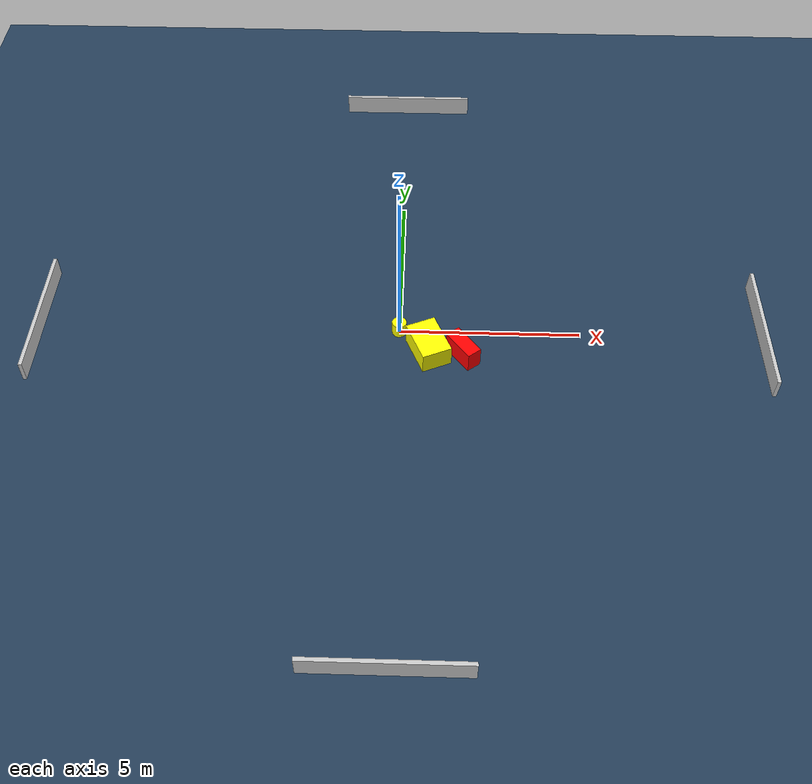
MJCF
<?xml version="1.0" ?>
<mujoco model="generated_environment">
  <option timestep="0.01" integrator="RK4" cone="elliptic"/>
  <default>
    <geom density="1"/>
  </default>
  <asset>
    <texture builtin="gradient" height="3072" name="skybox" rgb1="0.3 0.5 0.7" rgb2="0 0 0" type="skybox" width="512"/>
    <texture builtin="checker" height="300" name="groundplane" rgb1="0.2 0.3 0.4" rgb2="0.1 0.2 0.3" type="2d" width="300"/>
    <material name="groundplane" reflectance="0.2" texrepeat="5 5" texture="groundplane"/>
  </asset>
  <worldbody>
    <light dir="0 0 -1" directional="true" pos="0 0 1.5"/>
    <geom condim="3" friction="0.5 0.005 0.001" material="groundplane" name="floor" pos="0 0 0" size="0 0 0.05" type="plane"/>
    <body name="walls">
      <geom name="wall_1" condim="4" pos="-10.0 0.0 0.3" rgba="0.800000011920929 0.800000011920929 0.800000011920929 1.0" size="0.05 2.0 0.3" type="box"/>
      <geom name="wall_2" condim="4" pos="10.0 0.0 0.3" rgba="0.800000011920929 0.800000011920929 0.800000011920929 1.0" size="0.05 2.0 0.3" type="box"/>
      <geom name="wall_3" condim="4" pos="0.0 -10.0 0.3" rgba="0.800000011920929 0.800000011920929 0.800000011920929 1.0" size="2.0 0.05 0.3" type="box"/>
      <geom name="wall_4" condim="4" pos="0.0 10.0 0.3" rgba="0.800000011920929 0.800000011920929 0.800000011920929 1.0" size="2.0 0.05 0.3" type="box"/>
    </body>
    <body name="robot">
      <joint name="joint_x" type="slide" pos="0 0 0" axis="1 0 0"/>
      <joint name="joint_y" type="slide" pos="0 0 0" axis="0 1 0"/>
      <geom name="robot" type="cylinder" pos="0.0 0.0 0.2" size="0.2 0.2 0.0" mass="5.0" friction="1.0 0.005 0.0001" condim="4" rgba="1.0 1.0 0.0 1.0"/>
    </body>
    <body name="obstacle_1_movable">
      <geom name="obstacle_1_movable" condim="4" pos="0.815117649975575 -0.7001916887486523 0.3" euler="0 0 203.36447413218278" friction="0.0 0.005 0.001" rgba="1.0 1.0 0.0 1.0" size="0.4202562932318995 0.6098752959320362 0.3" type="box" mass="0.1"/>
      <joint type="free"/>
    </body>
    <body name="obstacle_2_static">
      <geom name="obstacle_2_static" condim="4" pos="1.7581530135572871 -0.840131278105397 0.3" euler="0 0 307.6097190200923" friction="0.0 0.005 0.001" rgba="1.0 0.0 0.0 1.0" size="0.4893371692422112 0.20860856569050923 0.3" type="box"/>
    </body>
  </worldbody>
  <actuator>
    <motor name="actuator_x" joint="joint_x" gear="1" ctrlrange="-1 1"/>
    <motor name="actuator_y" joint="joint_y" gear="1" ctrlrange="-1 1"/>
  </actuator>
</mujoco>
